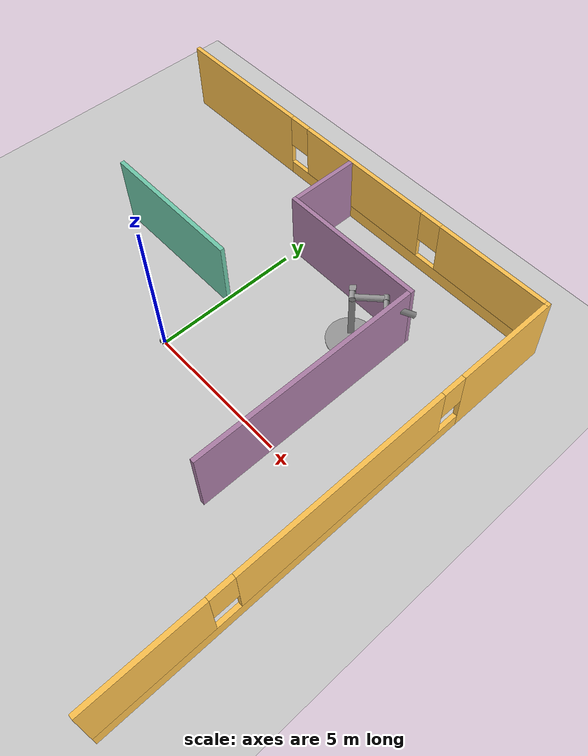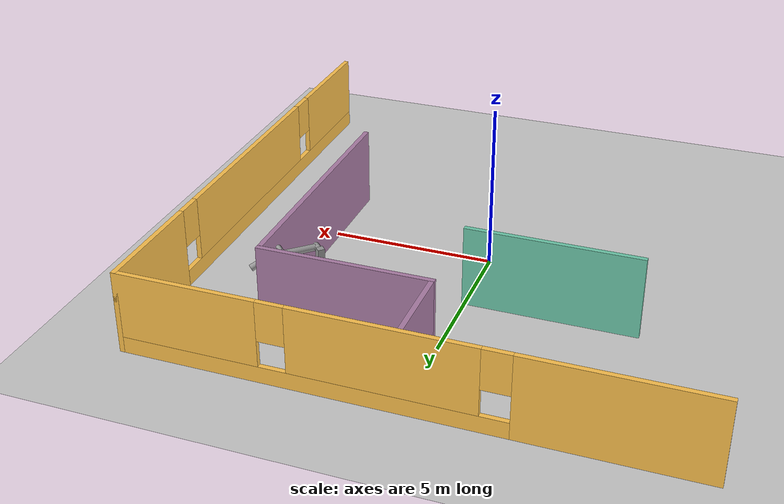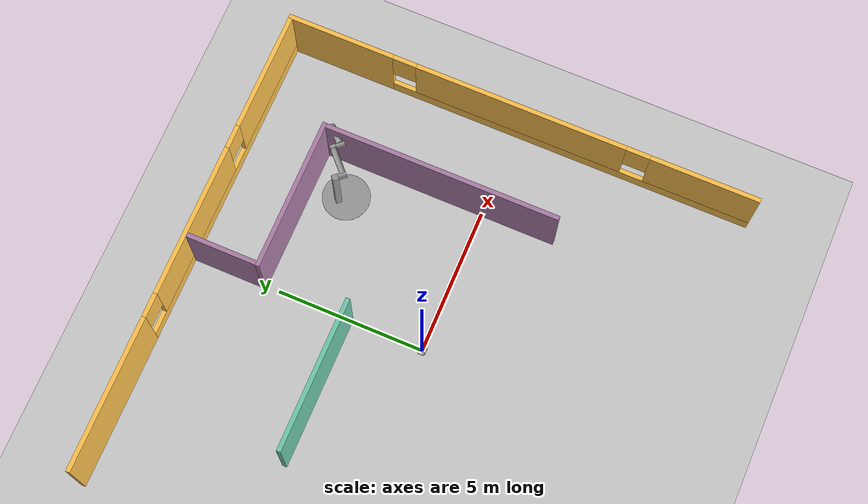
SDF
<sdf version="1.7">
 <world name="default">
  <model name="ground_plane">
   <static>1</static>
   <link name="link">
    <collision name="collision">
     <geometry><plane><normal>0 0 1</normal><size>100 100</size></plane></geometry>
     <surface><friction><ode><mu>100</mu><mu2>50</mu2></ode></friction></surface>
    </collision>
    <visual name="visual">
     <cast_shadows>0</cast_shadows>
     <geometry><plane><normal>0 0 1</normal><size>100 100</size></plane></geometry>
     <material>
      <script><uri>file://media/materials/scripts/gazebo.material</uri><name>Gazebo/Grey</name></script>
     </material>
    </visual>
   </link>
  </model>
  <model name="basic_office">
   <link name="Wall_11">
    <pose>8 0 0 0 0 -1.5708</pose>
    <visual name="Wall_11_Visual_3">
     <pose>6.2375 0 1.5 0 -0 0</pose>
     <geometry><box><size>3.675 0.15 2</size></box></geometry>
     <material>
      <script><uri>file://media/materials/scripts/gazebo.material</uri><name>Gazebo/Grey</name></script>
      <ambient>1 0.764706 0.305882 1</ambient>
      <shader type="pixel"/>
     </material>
     <meta><layer>0</layer></meta>
    </visual>
    <visual name="Wall_11_Visual_5">
     <pose>4 0 1.9 0 -0 0</pose>
     <geometry><box><size>0.8 0.15 1.2</size></box></geometry>
     <material>
      <script><uri>file://media/materials/scripts/gazebo.material</uri><name>Gazebo/Grey</name></script>
      <ambient>1 0.764706 0.305882 1</ambient>
      <shader type="pixel"/>
     </material>
     <meta><layer>0</layer></meta>
    </visual>
    <visual name="Wall_11_Visual_2">
     <pose>0 0 1.5 0 -0 0</pose>
     <geometry><box><size>7.2 0.15 2</size></box></geometry>
     <material>
      <script><uri>file://media/materials/scripts/gazebo.material</uri><name>Gazebo/Grey</name></script>
      <ambient>1 0.764706 0.305882 1</ambient>
      <shader type="pixel"/>
     </material>
     <meta><layer>0</layer></meta>
    </visual>
    <visual name="Wall_11_Visual_0">
     <pose>-6.2375 0 1.25 0 -0 0</pose>
     <geometry><box><size>3.675 0.15 2.5</size></box></geometry>
     <material>
      <script><uri>file://media/materials/scripts/gazebo.material</uri><name>Gazebo/Grey</name></script>
      <ambient>1 0.764706 0.305882 1</ambient>
      <shader type="pixel"/>
     </material>
     <meta><layer>0</layer></meta>
    </visual>
    <visual name="Wall_11_Visual_4">
     <pose>-4 0 1.9 0 -0 0</pose>
     <geometry><box><size>0.8 0.15 1.2</size></box></geometry>
     <material>
      <script><uri>file://media/materials/scripts/gazebo.material</uri><name>Gazebo/Grey</name></script>
      <ambient>1 0.764706 0.305882 1</ambient>
      <shader type="pixel"/>
     </material>
     <meta><layer>0</layer></meta>
    </visual>
    <visual name="Wall_11_Visual_1">
     <pose>1.8375 0 0.25 0 -0 0</pose>
     <geometry><box><size>12.475 0.15 0.5</size></box></geometry>
     <material>
      <script><uri>file://media/materials/scripts/gazebo.material</uri><name>Gazebo/Grey</name></script>
      <ambient>1 0.764706 0.305882 1</ambient>
      <shader type="pixel"/>
     </material>
     <meta><layer>0</layer></meta>
    </visual>
    <collision name="Wall_11_Collision_0">
     <pose>-6.2375 0 1.25 0 -0 0</pose>
     <geometry><box><size>3.675 0.15 2.5</size></box></geometry>
     <surface>
      <friction>
       <ode><mu>1</mu><mu2>1</mu2><fdir1>0 0 0</fdir1><slip1>0</slip1><slip2>0</slip2></ode>
       <torsional>
        <coefficient>1</coefficient>
        <patch_radius>0</patch_radius>
        <surface_radius>0</surface_radius>
        <use_patch_radius>1</use_patch_radius>
        <ode><slip>0</slip></ode>
       </torsional>
      </friction>
      <bounce><restitution_coefficient>0</restitution_coefficient><threshold>1e+06</threshold></bounce>
      <contact>
       <collide_without_contact>0</collide_without_contact>
       <collide_without_contact_bitmask>1</collide_without_contact_bitmask>
       <collide_bitmask>1</collide_bitmask>
       <ode>
        <soft_cfm>0</soft_cfm>
        <soft_erp>0.2</soft_erp>
        <kp>1e+13</kp>
        <kd>1</kd>
        <max_vel>0.01</max_vel>
        <min_depth>0</min_depth>
       </ode>
       <bullet>
        <split_impulse>1</split_impulse>
        <split_impulse_penetration_threshold>-0.01</split_impulse_penetration_threshold>
        <soft_cfm>0</soft_cfm>
        <soft_erp>0.2</soft_erp>
        <kp>1e+13</kp>
        <kd>1</kd>
       </bullet>
      </contact>
     </surface>
    </collision>
    <collision name="Wall_11_Collision_3">
     <pose>6.2375 0 1.5 0 -0 0</pose>
     <geometry><box><size>3.675 0.15 2</size></box></geometry>
     <surface>
      <friction>
       <ode><mu>1</mu><mu2>1</mu2><fdir1>0 0 0</fdir1><slip1>0</slip1><slip2>0</slip2></ode>
       <torsional>
        <coefficient>1</coefficient>
        <patch_radius>0</patch_radius>
        <surface_radius>0</surface_radius>
        <use_patch_radius>1</use_patch_radius>
        <ode><slip>0</slip></ode>
       </torsional>
      </friction>
      <bounce><restitution_coefficient>0</restitution_coefficient><threshold>1e+06</threshold></bounce>
      <contact>
       <collide_without_contact>0</collide_without_contact>
       <collide_without_contact_bitmask>1</collide_without_contact_bitmask>
       <collide_bitmask>1</collide_bitmask>
       <ode>
        <soft_cfm>0</soft_cfm>
        <soft_erp>0.2</soft_erp>
        <kp>1e+13</kp>
        <kd>1</kd>
        <max_vel>0.01</max_vel>
        <min_depth>0</min_depth>
       </ode>
       <bullet>
        <split_impulse>1</split_impulse>
        <split_impulse_penetration_threshold>-0.01</split_impulse_penetration_threshold>
        <soft_cfm>0</soft_cfm>
        <soft_erp>0.2</soft_erp>
        <kp>1e+13</kp>
        <kd>1</kd>
       </bullet>
      </contact>
     </surface>
    </collision>
    <collision name="Wall_11_Collision_5">
     <pose>4 0 1.9 0 -0 0</pose>
     <geometry><box><size>0.8 0.15 1.2</size></box></geometry>
     <surface>
      <friction>
       <ode><mu>1</mu><mu2>1</mu2><fdir1>0 0 0</fdir1><slip1>0</slip1><slip2>0</slip2></ode>
       <torsional>
        <coefficient>1</coefficient>
        <patch_radius>0</patch_radius>
        <surface_radius>0</surface_radius>
        <use_patch_radius>1</use_patch_radius>
        <ode><slip>0</slip></ode>
       </torsional>
      </friction>
      <bounce><restitution_coefficient>0</restitution_coefficient><threshold>1e+06</threshold></bounce>
      <contact>
       <collide_without_contact>0</collide_without_contact>
       <collide_without_contact_bitmask>1</collide_without_contact_bitmask>
       <collide_bitmask>1</collide_bitmask>
       <ode>
        <soft_cfm>0</soft_cfm>
        <soft_erp>0.2</soft_erp>
        <kp>1e+13</kp>
        <kd>1</kd>
        <max_vel>0.01</max_vel>
        <min_depth>0</min_depth>
       </ode>
       <bullet>
        <split_impulse>1</split_impulse>
        <split_impulse_penetration_threshold>-0.01</split_impulse_penetration_threshold>
        <soft_cfm>0</soft_cfm>
        <soft_erp>0.2</soft_erp>
        <kp>1e+13</kp>
        <kd>1</kd>
       </bullet>
      </contact>
     </surface>
    </collision>
    <collision name="Wall_11_Collision_1">
     <pose>1.8375 0 0.25 0 -0 0</pose>
     <geometry><box><size>12.475 0.15 0.5</size></box></geometry>
     <surface>
      <friction>
       <ode><mu>1</mu><mu2>1</mu2><fdir1>0 0 0</fdir1><slip1>0</slip1><slip2>0</slip2></ode>
       <torsional>
        <coefficient>1</coefficient>
        <patch_radius>0</patch_radius>
        <surface_radius>0</surface_radius>
        <use_patch_radius>1</use_patch_radius>
        <ode><slip>0</slip></ode>
       </torsional>
      </friction>
      <bounce><restitution_coefficient>0</restitution_coefficient><threshold>1e+06</threshold></bounce>
      <contact>
       <collide_without_contact>0</collide_without_contact>
       <collide_without_contact_bitmask>1</collide_without_contact_bitmask>
       <collide_bitmask>1</collide_bitmask>
       <ode>
        <soft_cfm>0</soft_cfm>
        <soft_erp>0.2</soft_erp>
        <kp>1e+13</kp>
        <kd>1</kd>
        <max_vel>0.01</max_vel>
        <min_depth>0</min_depth>
       </ode>
       <bullet>
        <split_impulse>1</split_impulse>
        <split_impulse_penetration_threshold>-0.01</split_impulse_penetration_threshold>
        <soft_cfm>0</soft_cfm>
        <soft_erp>0.2</soft_erp>
        <kp>1e+13</kp>
        <kd>1</kd>
       </bullet>
      </contact>
     </surface>
    </collision>
    <collision name="Wall_11_Collision_4">
     <pose>-4 0 1.9 0 -0 0</pose>
     <geometry><box><size>0.8 0.15 1.2</size></box></geometry>
     <surface>
      <friction>
       <ode><mu>1</mu><mu2>1</mu2><fdir1>0 0 0</fdir1><slip1>0</slip1><slip2>0</slip2></ode>
       <torsional>
        <coefficient>1</coefficient>
        <patch_radius>0</patch_radius>
        <surface_radius>0</surface_radius>
        <use_patch_radius>1</use_patch_radius>
        <ode><slip>0</slip></ode>
       </torsional>
      </friction>
      <bounce><restitution_coefficient>0</restitution_coefficient><threshold>1e+06</threshold></bounce>
      <contact>
       <collide_without_contact>0</collide_without_contact>
       <collide_without_contact_bitmask>1</collide_without_contact_bitmask>
       <collide_bitmask>1</collide_bitmask>
       <ode>
        <soft_cfm>0</soft_cfm>
        <soft_erp>0.2</soft_erp>
        <kp>1e+13</kp>
        <kd>1</kd>
        <max_vel>0.01</max_vel>
        <min_depth>0</min_depth>
       </ode>
       <bullet>
        <split_impulse>1</split_impulse>
        <split_impulse_penetration_threshold>-0.01</split_impulse_penetration_threshold>
        <soft_cfm>0</soft_cfm>
        <soft_erp>0.2</soft_erp>
        <kp>1e+13</kp>
        <kd>1</kd>
       </bullet>
      </contact>
     </surface>
    </collision>
    <collision name="Wall_11_Collision_2">
     <pose>0 0 1.5 0 -0 0</pose>
     <geometry><box><size>7.2 0.15 2</size></box></geometry>
     <surface>
      <friction>
       <ode><mu>1</mu><mu2>1</mu2><fdir1>0 0 0</fdir1><slip1>0</slip1><slip2>0</slip2></ode>
       <torsional>
        <coefficient>1</coefficient>
        <patch_radius>0</patch_radius>
        <surface_radius>0</surface_radius>
        <use_patch_radius>1</use_patch_radius>
        <ode><slip>0</slip></ode>
       </torsional>
      </friction>
      <bounce><restitution_coefficient>0</restitution_coefficient><threshold>1e+06</threshold></bounce>
      <contact>
       <collide_without_contact>0</collide_without_contact>
       <collide_without_contact_bitmask>1</collide_without_contact_bitmask>
       <collide_bitmask>1</collide_bitmask>
       <ode>
        <soft_cfm>0</soft_cfm>
        <soft_erp>0.2</soft_erp>
        <kp>1e+13</kp>
        <kd>1</kd>
        <max_vel>0.01</max_vel>
        <min_depth>0</min_depth>
       </ode>
       <bullet>
        <split_impulse>1</split_impulse>
        <split_impulse_penetration_threshold>-0.01</split_impulse_penetration_threshold>
        <soft_cfm>0</soft_cfm>
        <soft_erp>0.2</soft_erp>
        <kp>1e+13</kp>
        <kd>1</kd>
       </bullet>
      </contact>
     </surface>
    </collision>
   </link>
   <link name="Wall_15">
    <pose>0 8 0 0 -0 0</pose>
    <visual name="Wall_15_Visual_2">
     <pose>0.5 0 1.5 0 -0 0</pose>
     <geometry><box><size>5.2 0.15 2</size></box></geometry>
     <material>
      <script><uri>file://media/materials/scripts/gazebo.material</uri><name>Gazebo/Grey</name></script>
      <ambient>1 0.764706 0.305882 1</ambient>
      <shader type="pixel"/>
     </material>
     <meta><layer>0</layer></meta>
    </visual>
    <visual name="Wall_15_Visual_4">
     <pose>-2.5 0 1.9 0 -0 0</pose>
     <geometry><box><size>0.8 0.15 1.2</size></box></geometry>
     <material>
      <script><uri>file://media/materials/scripts/gazebo.material</uri><name>Gazebo/Grey</name></script>
      <ambient>1 0.764706 0.305882 1</ambient>
      <shader type="pixel"/>
     </material>
     <meta><layer>0</layer></meta>
    </visual>
    <visual name="Wall_15_Visual_5">
     <pose>3.5 0 1.9 0 -0 0</pose>
     <geometry><box><size>0.8 0.15 1.2</size></box></geometry>
     <material>
      <script><uri>file://media/materials/scripts/gazebo.material</uri><name>Gazebo/Grey</name></script>
      <ambient>1 0.764706 0.305882 1</ambient>
      <shader type="pixel"/>
     </material>
     <meta><layer>0</layer></meta>
    </visual>
    <visual name="Wall_15_Visual_3">
     <pose>5.9875 0 1.5 0 -0 0</pose>
     <geometry><box><size>4.175 0.15 2</size></box></geometry>
     <material>
      <script><uri>file://media/materials/scripts/gazebo.material</uri><name>Gazebo/Grey</name></script>
      <ambient>1 0.764706 0.305882 1</ambient>
      <shader type="pixel"/>
     </material>
     <meta><layer>0</layer></meta>
    </visual>
    <visual name="Wall_15_Visual_1">
     <pose>2.5875 0 0.25 0 -0 0</pose>
     <geometry><box><size>10.975 0.15 0.5</size></box></geometry>
     <material>
      <script><uri>file://media/materials/scripts/gazebo.material</uri><name>Gazebo/Grey</name></script>
      <ambient>1 0.764706 0.305882 1</ambient>
      <shader type="pixel"/>
     </material>
     <meta><layer>0</layer></meta>
    </visual>
    <visual name="Wall_15_Visual_0">
     <pose>-5.4875 0 1.25 0 -0 0</pose>
     <geometry><box><size>5.175 0.15 2.5</size></box></geometry>
     <material>
      <script><uri>file://media/materials/scripts/gazebo.material</uri><name>Gazebo/Grey</name></script>
      <ambient>1 0.764706 0.305882 1</ambient>
      <shader type="pixel"/>
     </material>
     <meta><layer>0</layer></meta>
    </visual>
    <collision name="Wall_15_Collision_0">
     <pose>-5.4875 0 1.25 0 -0 0</pose>
     <geometry><box><size>5.175 0.15 2.5</size></box></geometry>
     <surface>
      <friction>
       <ode><mu>1</mu><mu2>1</mu2><fdir1>0 0 0</fdir1><slip1>0</slip1><slip2>0</slip2></ode>
       <torsional>
        <coefficient>1</coefficient>
        <patch_radius>0</patch_radius>
        <surface_radius>0</surface_radius>
        <use_patch_radius>1</use_patch_radius>
        <ode><slip>0</slip></ode>
       </torsional>
      </friction>
      <bounce><restitution_coefficient>0</restitution_coefficient><threshold>1e+06</threshold></bounce>
      <contact>
       <collide_without_contact>0</collide_without_contact>
       <collide_without_contact_bitmask>1</collide_without_contact_bitmask>
       <collide_bitmask>1</collide_bitmask>
       <ode>
        <soft_cfm>0</soft_cfm>
        <soft_erp>0.2</soft_erp>
        <kp>1e+13</kp>
        <kd>1</kd>
        <max_vel>0.01</max_vel>
        <min_depth>0</min_depth>
       </ode>
       <bullet>
        <split_impulse>1</split_impulse>
        <split_impulse_penetration_threshold>-0.01</split_impulse_penetration_threshold>
        <soft_cfm>0</soft_cfm>
        <soft_erp>0.2</soft_erp>
        <kp>1e+13</kp>
        <kd>1</kd>
       </bullet>
      </contact>
     </surface>
    </collision>
    <collision name="Wall_15_Collision_5">
     <pose>3.5 0 1.9 0 -0 0</pose>
     <geometry><box><size>0.8 0.15 1.2</size></box></geometry>
     <surface>
      <friction>
       <ode><mu>1</mu><mu2>1</mu2><fdir1>0 0 0</fdir1><slip1>0</slip1><slip2>0</slip2></ode>
       <torsional>
        <coefficient>1</coefficient>
        <patch_radius>0</patch_radius>
        <surface_radius>0</surface_radius>
        <use_patch_radius>1</use_patch_radius>
        <ode><slip>0</slip></ode>
       </torsional>
      </friction>
      <bounce><restitution_coefficient>0</restitution_coefficient><threshold>1e+06</threshold></bounce>
      <contact>
       <collide_without_contact>0</collide_without_contact>
       <collide_without_contact_bitmask>1</collide_without_contact_bitmask>
       <collide_bitmask>1</collide_bitmask>
       <ode>
        <soft_cfm>0</soft_cfm>
        <soft_erp>0.2</soft_erp>
        <kp>1e+13</kp>
        <kd>1</kd>
        <max_vel>0.01</max_vel>
        <min_depth>0</min_depth>
       </ode>
       <bullet>
        <split_impulse>1</split_impulse>
        <split_impulse_penetration_threshold>-0.01</split_impulse_penetration_threshold>
        <soft_cfm>0</soft_cfm>
        <soft_erp>0.2</soft_erp>
        <kp>1e+13</kp>
        <kd>1</kd>
       </bullet>
      </contact>
     </surface>
    </collision>
    <collision name="Wall_15_Collision_2">
     <pose>0.5 0 1.5 0 -0 0</pose>
     <geometry><box><size>5.2 0.15 2</size></box></geometry>
     <surface>
      <friction>
       <ode><mu>1</mu><mu2>1</mu2><fdir1>0 0 0</fdir1><slip1>0</slip1><slip2>0</slip2></ode>
       <torsional>
        <coefficient>1</coefficient>
        <patch_radius>0</patch_radius>
        <surface_radius>0</surface_radius>
        <use_patch_radius>1</use_patch_radius>
        <ode><slip>0</slip></ode>
       </torsional>
      </friction>
      <bounce><restitution_coefficient>0</restitution_coefficient><threshold>1e+06</threshold></bounce>
      <contact>
       <collide_without_contact>0</collide_without_contact>
       <collide_without_contact_bitmask>1</collide_without_contact_bitmask>
       <collide_bitmask>1</collide_bitmask>
       <ode>
        <soft_cfm>0</soft_cfm>
        <soft_erp>0.2</soft_erp>
        <kp>1e+13</kp>
        <kd>1</kd>
        <max_vel>0.01</max_vel>
        <min_depth>0</min_depth>
       </ode>
       <bullet>
        <split_impulse>1</split_impulse>
        <split_impulse_penetration_threshold>-0.01</split_impulse_penetration_threshold>
        <soft_cfm>0</soft_cfm>
        <soft_erp>0.2</soft_erp>
        <kp>1e+13</kp>
        <kd>1</kd>
       </bullet>
      </contact>
     </surface>
    </collision>
    <collision name="Wall_15_Collision_3">
     <pose>5.9875 0 1.5 0 -0 0</pose>
     <geometry><box><size>4.175 0.15 2</size></box></geometry>
     <surface>
      <friction>
       <ode><mu>1</mu><mu2>1</mu2><fdir1>0 0 0</fdir1><slip1>0</slip1><slip2>0</slip2></ode>
       <torsional>
        <coefficient>1</coefficient>
        <patch_radius>0</patch_radius>
        <surface_radius>0</surface_radius>
        <use_patch_radius>1</use_patch_radius>
        <ode><slip>0</slip></ode>
       </torsional>
      </friction>
      <bounce><restitution_coefficient>0</restitution_coefficient><threshold>1e+06</threshold></bounce>
      <contact>
       <collide_without_contact>0</collide_without_contact>
       <collide_without_contact_bitmask>1</collide_without_contact_bitmask>
       <collide_bitmask>1</collide_bitmask>
       <ode>
        <soft_cfm>0</soft_cfm>
        <soft_erp>0.2</soft_erp>
        <kp>1e+13</kp>
        <kd>1</kd>
        <max_vel>0.01</max_vel>
        <min_depth>0</min_depth>
       </ode>
       <bullet>
        <split_impulse>1</split_impulse>
        <split_impulse_penetration_threshold>-0.01</split_impulse_penetration_threshold>
        <soft_cfm>0</soft_cfm>
        <soft_erp>0.2</soft_erp>
        <kp>1e+13</kp>
        <kd>1</kd>
       </bullet>
      </contact>
     </surface>
    </collision>
    <collision name="Wall_15_Collision_1">
     <pose>2.5875 0 0.25 0 -0 0</pose>
     <geometry><box><size>10.975 0.15 0.5</size></box></geometry>
     <surface>
      <friction>
       <ode><mu>1</mu><mu2>1</mu2><fdir1>0 0 0</fdir1><slip1>0</slip1><slip2>0</slip2></ode>
       <torsional>
        <coefficient>1</coefficient>
        <patch_radius>0</patch_radius>
        <surface_radius>0</surface_radius>
        <use_patch_radius>1</use_patch_radius>
        <ode><slip>0</slip></ode>
       </torsional>
      </friction>
      <bounce><restitution_coefficient>0</restitution_coefficient><threshold>1e+06</threshold></bounce>
      <contact>
       <collide_without_contact>0</collide_without_contact>
       <collide_without_contact_bitmask>1</collide_without_contact_bitmask>
       <collide_bitmask>1</collide_bitmask>
       <ode>
        <soft_cfm>0</soft_cfm>
        <soft_erp>0.2</soft_erp>
        <kp>1e+13</kp>
        <kd>1</kd>
        <max_vel>0.01</max_vel>
        <min_depth>0</min_depth>
       </ode>
       <bullet>
        <split_impulse>1</split_impulse>
        <split_impulse_penetration_threshold>-0.01</split_impulse_penetration_threshold>
        <soft_cfm>0</soft_cfm>
        <soft_erp>0.2</soft_erp>
        <kp>1e+13</kp>
        <kd>1</kd>
       </bullet>
      </contact>
     </surface>
    </collision>
    <collision name="Wall_15_Collision_4">
     <pose>-2.5 0 1.9 0 -0 0</pose>
     <geometry><box><size>0.8 0.15 1.2</size></box></geometry>
     <surface>
      <friction>
       <ode><mu>1</mu><mu2>1</mu2><fdir1>0 0 0</fdir1><slip1>0</slip1><slip2>0</slip2></ode>
       <torsional>
        <coefficient>1</coefficient>
        <patch_radius>0</patch_radius>
        <surface_radius>0</surface_radius>
        <use_patch_radius>1</use_patch_radius>
        <ode><slip>0</slip></ode>
       </torsional>
      </friction>
      <bounce><restitution_coefficient>0</restitution_coefficient><threshold>1e+06</threshold></bounce>
      <contact>
       <collide_without_contact>0</collide_without_contact>
       <collide_without_contact_bitmask>1</collide_without_contact_bitmask>
       <collide_bitmask>1</collide_bitmask>
       <ode>
        <soft_cfm>0</soft_cfm>
        <soft_erp>0.2</soft_erp>
        <kp>1e+13</kp>
        <kd>1</kd>
        <max_vel>0.01</max_vel>
        <min_depth>0</min_depth>
       </ode>
       <bullet>
        <split_impulse>1</split_impulse>
        <split_impulse_penetration_threshold>-0.01</split_impulse_penetration_threshold>
        <soft_cfm>0</soft_cfm>
        <soft_erp>0.2</soft_erp>
        <kp>1e+13</kp>
        <kd>1</kd>
       </bullet>
      </contact>
     </surface>
    </collision>
   </link>
   <link name="Wall_25">
    <pose>5 1.461 0 0 0 -1.5708</pose>
    <inertial>
     <mass>1</mass>
     <inertia><ixx>1</ixx><ixy>0</ixy><ixz>0</ixz><iyy>1</iyy><iyz>0</iyz><izz>1</izz></inertia>
    </inertial>
    <visual name="Wall_25_Visual">
     <pose>0 0 1.25 0 -0 0</pose>
     <geometry><box><size>7.9275 0.15 2.5</size></box></geometry>
     <material>
      <script><uri>file://media/materials/scripts/gazebo.material</uri><name>Gazebo/Grey</name></script>
      <ambient>0.678 0.498 0.659 1</ambient>
      <shader type="pixel"><normal_map>__default__</normal_map></shader>
      <diffuse>0.7 0.7 0.7 1</diffuse>
      <specular>0.01 0.01 0.01 1</specular>
      <emissive>0 0 0 1</emissive>
     </material>
     <meta><layer>0</layer></meta>
    </visual>
    <collision name="Wall_25_Collision">
     <pose>0 0 1.25 0 -0 0</pose>
     <geometry><box><size>7.9275 0.15 2.5</size></box></geometry>
     <surface>
      <friction>
       <ode><mu>1</mu><mu2>1</mu2><fdir1>0 0 0</fdir1><slip1>0</slip1><slip2>0</slip2></ode>
       <torsional>
        <coefficient>1</coefficient>
        <patch_radius>0</patch_radius>
        <surface_radius>0</surface_radius>
        <use_patch_radius>1</use_patch_radius>
        <ode><slip>0</slip></ode>
       </torsional>
      </friction>
      <bounce><restitution_coefficient>0</restitution_coefficient><threshold>1e+06</threshold></bounce>
      <contact>
       <collide_without_contact>0</collide_without_contact>
       <collide_without_contact_bitmask>1</collide_without_contact_bitmask>
       <collide_bitmask>1</collide_bitmask>
       <ode>
        <soft_cfm>0</soft_cfm>
        <soft_erp>0.2</soft_erp>
        <kp>1e+13</kp>
        <kd>1</kd>
        <max_vel>0.01</max_vel>
        <min_depth>0</min_depth>
       </ode>
       <bullet>
        <split_impulse>1</split_impulse>
        <split_impulse_penetration_threshold>-0.01</split_impulse_penetration_threshold>
        <soft_cfm>0</soft_cfm>
        <soft_erp>0.2</soft_erp>
        <kp>1e+13</kp>
        <kd>1</kd>
       </bullet>
      </contact>
     </surface>
    </collision>
   </link>
   <link name="Wall_34">
    <pose>-2.5 2.5 0 0 -0 0</pose>
    <visual name="Wall_34_Visual">
     <pose>0 0 1.25 0 -0 0</pose>
     <geometry><box><size>5.15 0.15 2.5</size></box></geometry>
     <material>
      <script><uri>file://media/materials/scripts/gazebo.material</uri><name>Gazebo/Grey</name></script>
      <ambient>0.435294 0.796078 0.67451 1</ambient>
      <shader type="pixel"/>
     </material>
     <meta><layer>0</layer></meta>
    </visual>
    <collision name="Wall_34_Collision">
     <pose>0 0 1.25 0 -0 0</pose>
     <geometry><box><size>5.15 0.15 2.5</size></box></geometry>
     <surface>
      <friction>
       <ode><mu>1</mu><mu2>1</mu2><fdir1>0 0 0</fdir1><slip1>0</slip1><slip2>0</slip2></ode>
       <torsional>
        <coefficient>1</coefficient>
        <patch_radius>0</patch_radius>
        <surface_radius>0</surface_radius>
        <use_patch_radius>1</use_patch_radius>
        <ode><slip>0</slip></ode>
       </torsional>
      </friction>
      <bounce><restitution_coefficient>0</restitution_coefficient><threshold>1e+06</threshold></bounce>
      <contact>
       <collide_without_contact>0</collide_without_contact>
       <collide_without_contact_bitmask>1</collide_without_contact_bitmask>
       <collide_bitmask>1</collide_bitmask>
       <ode>
        <soft_cfm>0</soft_cfm>
        <soft_erp>0.2</soft_erp>
        <kp>1e+13</kp>
        <kd>1</kd>
        <max_vel>0.01</max_vel>
        <min_depth>0</min_depth>
       </ode>
       <bullet>
        <split_impulse>1</split_impulse>
        <split_impulse_penetration_threshold>-0.01</split_impulse_penetration_threshold>
        <soft_cfm>0</soft_cfm>
        <soft_erp>0.2</soft_erp>
        <kp>1e+13</kp>
        <kd>1</kd>
       </bullet>
      </contact>
     </surface>
    </collision>
   </link>
   <link name="Wall_40">
    <pose>2.5 5.5 0 0 -0 3.14159</pose>
    <visual name="Wall_40_Visual">
     <pose>0 0 1.25 0 -0 0</pose>
     <geometry><box><size>5.15 0.15 2.5</size></box></geometry>
     <material>
      <script><uri>file://media/materials/scripts/gazebo.material</uri><name>Gazebo/Grey</name></script>
      <ambient>0.678431 0.498039 0.658824 1</ambient>
      <shader type="pixel"/>
     </material>
     <meta><layer>0</layer></meta>
    </visual>
    <collision name="Wall_40_Collision">
     <pose>0 0 1.25 0 -0 0</pose>
     <geometry><box><size>5.15 0.15 2.5</size></box></geometry>
     <surface>
      <friction>
       <ode><mu>1</mu><mu2>1</mu2><fdir1>0 0 0</fdir1><slip1>0</slip1><slip2>0</slip2></ode>
       <torsional>
        <coefficient>1</coefficient>
        <patch_radius>0</patch_radius>
        <surface_radius>0</surface_radius>
        <use_patch_radius>1</use_patch_radius>
        <ode><slip>0</slip></ode>
       </torsional>
      </friction>
      <bounce><restitution_coefficient>0</restitution_coefficient><threshold>1e+06</threshold></bounce>
      <contact>
       <collide_without_contact>0</collide_without_contact>
       <collide_without_contact_bitmask>1</collide_without_contact_bitmask>
       <collide_bitmask>1</collide_bitmask>
       <ode>
        <soft_cfm>0</soft_cfm>
        <soft_erp>0.2</soft_erp>
        <kp>1e+13</kp>
        <kd>1</kd>
        <max_vel>0.01</max_vel>
        <min_depth>0</min_depth>
       </ode>
       <bullet>
        <split_impulse>1</split_impulse>
        <split_impulse_penetration_threshold>-0.01</split_impulse_penetration_threshold>
        <soft_cfm>0</soft_cfm>
        <soft_erp>0.2</soft_erp>
        <kp>1e+13</kp>
        <kd>1</kd>
       </bullet>
      </contact>
     </surface>
    </collision>
   </link>
   <link name="Wall_42">
    <pose>0 6.75 0 0 0 -1.5708</pose>
    <inertial>
     <mass>1</mass>
     <inertia><ixx>1</ixx><ixy>0</ixy><ixz>0</ixz><iyy>1</iyy><iyz>0</iyz><izz>1</izz></inertia>
    </inertial>
    <visual name="Wall_42_Visual">
     <pose>0 0 1.25 0 -0 0</pose>
     <geometry><box><size>2.35 0.15 2.5</size></box></geometry>
     <material>
      <script><uri>file://media/materials/scripts/gazebo.material</uri><name>Gazebo/Grey</name></script>
      <ambient>0.678 0.498 0.659 1</ambient>
      <shader type="pixel"><normal_map>__default__</normal_map></shader>
      <diffuse>0.7 0.7 0.7 1</diffuse>
      <specular>0.01 0.01 0.01 1</specular>
      <emissive>0 0 0 1</emissive>
     </material>
     <meta><layer>0</layer></meta>
    </visual>
    <collision name="Wall_42_Collision">
     <pose>0 0 1.25 0 -0 0</pose>
     <geometry><box><size>2.35 0.15 2.5</size></box></geometry>
     <surface>
      <friction>
       <ode><mu>1</mu><mu2>1</mu2><fdir1>0 0 0</fdir1><slip1>0</slip1><slip2>0</slip2></ode>
       <torsional>
        <coefficient>1</coefficient>
        <patch_radius>0</patch_radius>
        <surface_radius>0</surface_radius>
        <use_patch_radius>1</use_patch_radius>
        <ode><slip>0</slip></ode>
       </torsional>
      </friction>
      <bounce><restitution_coefficient>0</restitution_coefficient><threshold>1e+06</threshold></bounce>
      <contact>
       <collide_without_contact>0</collide_without_contact>
       <collide_without_contact_bitmask>1</collide_without_contact_bitmask>
       <collide_bitmask>1</collide_bitmask>
       <ode>
        <soft_cfm>0</soft_cfm>
        <soft_erp>0.2</soft_erp>
        <kp>1e+13</kp>
        <kd>1</kd>
        <max_vel>0.01</max_vel>
        <min_depth>0</min_depth>
       </ode>
       <bullet>
        <split_impulse>1</split_impulse>
        <split_impulse_penetration_threshold>-0.01</split_impulse_penetration_threshold>
        <soft_cfm>0</soft_cfm>
        <soft_erp>0.2</soft_erp>
        <kp>1e+13</kp>
        <kd>1</kd>
       </bullet>
      </contact>
     </surface>
    </collision>
   </link>
   <static>1</static>
  </model>
  <model name="double_pendulum_with_base">
   <link name="base">
    <inertial>
     <mass>100</mass>
     <inertia><ixx>1</ixx><ixy>0</ixy><ixz>0</ixz><iyy>1</iyy><iyz>0</iyz><izz>1</izz></inertia>
    </inertial>
    <visual name="vis_plate_on_ground">
     <pose>0 0 0.01 0 -0 0</pose>
     <geometry><cylinder><radius>0.8</radius><length>0.02</length></cylinder></geometry>
     <material>
      <script><uri>file://media/materials/scripts/gazebo.material</uri><name>Gazebo/Grey</name></script>
     </material>
    </visual>
    <visual name="vis_pole">
     <pose>-0.275 0 1.1 0 -0 0</pose>
     <geometry><box><size>0.2 0.2 2.2</size></box></geometry>
     <material>
      <script><uri>file://media/materials/scripts/gazebo.material</uri><name>Gazebo/Grey</name></script>
     </material>
    </visual>
    <collision name="col_plate_on_ground">
     <pose>0 0 0.01 0 -0 0</pose>
     <geometry><cylinder><radius>0.8</radius><length>0.02</length></cylinder></geometry>
    </collision>
    <collision name="col_pole">
     <pose>-0.275 0 1.1 0 -0 0</pose>
     <geometry><box><size>0.2 0.2 2.2</size></box></geometry>
    </collision>
   </link>
   <link name="upper_link">
    <pose>0 0 2.1 -1.5708 0 0</pose>
    <inertial>
     <pose>0 0 0.5 0 -0 0</pose>
     <inertia><ixx>1</ixx><ixy>0</ixy><ixz>0</ixz><iyy>1</iyy><iyz>0</iyz><izz>1</izz></inertia>
     <mass>1</mass>
    </inertial>
    <visual name="vis_upper_joint">
     <pose>-0.05 0 0 3.14159 1.57079 3.14159</pose>
     <geometry><cylinder><radius>0.1</radius><length>0.3</length></cylinder></geometry>
     <material>
      <script><uri>file://media/materials/scripts/gazebo.material</uri><name>Gazebo/Grey</name></script>
     </material>
    </visual>
    <visual name="vis_lower_joint">
     <pose>0 0 1 3.14159 1.57079 3.14159</pose>
     <geometry><cylinder><radius>0.1</radius><length>0.2</length></cylinder></geometry>
     <material>
      <script><uri>file://media/materials/scripts/gazebo.material</uri><name>Gazebo/Grey</name></script>
     </material>
    </visual>
    <visual name="vis_cylinder">
     <pose>0 0 0.5 0 -0 0</pose>
     <geometry><cylinder><radius>0.1</radius><length>0.9</length></cylinder></geometry>
     <material>
      <script><uri>file://media/materials/scripts/gazebo.material</uri><name>Gazebo/Grey</name></script>
     </material>
    </visual>
    <collision name="col_upper_joint">
     <pose>-0.05 0 0 3.14159 1.57079 3.14159</pose>
     <geometry><cylinder><radius>0.1</radius><length>0.3</length></cylinder></geometry>
    </collision>
    <collision name="col_lower_joint">
     <pose>0 0 1 3.14159 1.57079 3.14159</pose>
     <geometry><cylinder><radius>0.1</radius><length>0.2</length></cylinder></geometry>
    </collision>
    <collision name="col_cylinder">
     <pose>0 0 0.5 0 -0 0</pose>
     <geometry><cylinder><radius>0.1</radius><length>0.9</length></cylinder></geometry>
    </collision>
   </link>
   <link name="lower_link">
    <pose>0.25 1 2.1 -2 0 0</pose>
    <inertial>
     <pose>0 0 0.5 0 -0 0</pose>
     <inertia><ixx>1</ixx><ixy>0</ixy><ixz>0</ixz><iyy>1</iyy><iyz>0</iyz><izz>1</izz></inertia>
     <mass>1</mass>
    </inertial>
    <visual name="vis_lower_joint">
     <pose>0 0 0 3.14159 1.57079 3.14159</pose>
     <geometry><cylinder><radius>0.08</radius><length>0.3</length></cylinder></geometry>
     <material>
      <script><uri>file://media/materials/scripts/gazebo.material</uri><name>Gazebo/Grey</name></script>
     </material>
    </visual>
    <visual name="vis_cylinder">
     <pose>0 0 0.5 0 -0 0</pose>
     <geometry><cylinder><radius>0.1</radius><length>0.9</length></cylinder></geometry>
     <material>
      <script><uri>file://media/materials/scripts/gazebo.material</uri><name>Gazebo/Grey</name></script>
     </material>
    </visual>
    <collision name="col_lower_joint">
     <pose>0 0 0 3.14159 1.57079 3.14159</pose>
     <geometry><cylinder><radius>0.08</radius><length>0.3</length></cylinder></geometry>
    </collision>
    <collision name="col_cylinder">
     <pose>0 0 0.5 0 -0 0</pose>
     <geometry><cylinder><radius>0.1</radius><length>0.9</length></cylinder></geometry>
    </collision>
   </link>
   <joint name="upper_joint" type="revolute">
    <parent>base</parent>
    <child>upper_link</child>
    <axis>
     <xyz>1 0 0</xyz>
     <limit><lower>-1e+16</lower><upper>1e+16</upper></limit>
     <dynamics><spring_reference>0</spring_reference><spring_stiffness>0</spring_stiffness></dynamics>
    </axis>
   </joint>
   <joint name="lower_joint" type="revolute">
    <parent>upper_link</parent>
    <child>lower_link</child>
    <axis>
     <xyz>1 0 0</xyz>
     <limit><lower>-1e+16</lower><upper>1e+16</upper></limit>
     <dynamics><spring_reference>0</spring_reference><spring_stiffness>0</spring_stiffness></dynamics>
    </axis>
   </joint>
   <pose>3.79781 4.31799 -1e-05 1e-06 -1.7e-05 -0.817457</pose>
  </model>
  <model name="fw_robot">
   <link name="link_0_clone">
    <inertial>
     <mass>1</mass>
     <inertia>
      <ixx>0.166667</ixx>
      <ixy>0</ixy>
      <ixz>0</ixz>
      <iyy>0.166667</iyy>
      <iyz>0</iyz>
      <izz>0.166667</izz>
     </inertia>
    </inertial>
    <pose>0 0 0.05 0 -0 0</pose>
    <visual name="visual">
     <geometry><box><size>0.3 0.2 0.02</size></box></geometry>
     <material>
      <lighting>1</lighting>
      <script><uri>file://media/materials/scripts/gazebo.material</uri><name>Gazebo/Grey</name></script>
      <shader type="pixel"><normal_map>__default__</normal_map></shader>
      <ambient>0.3 0.3 0.3 1</ambient>
      <diffuse>0.7 0.7 0.7 1</diffuse>
      <specular>0.01 0.01 0.01 1</specular>
      <emissive>0 0 0 1</emissive>
     </material>
    </visual>
    <collision name="collision_1">
     <geometry><box><size>0.3 0.2 0.02</size></box></geometry>
     <surface>
      <friction>
       <ode><mu>1</mu><mu2>1</mu2><fdir1>0 0 0</fdir1><slip1>0</slip1><slip2>0</slip2></ode>
       <torsional>
        <coefficient>1</coefficient>
        <patch_radius>0</patch_radius>
        <surface_radius>0</surface_radius>
        <use_patch_radius>1</use_patch_radius>
        <ode><slip>0</slip></ode>
       </torsional>
      </friction>
      <bounce><restitution_coefficient>0</restitution_coefficient><threshold>1e+06</threshold></bounce>
      <contact>
       <collide_without_contact>0</collide_without_contact>
       <collide_without_contact_bitmask>1</collide_without_contact_bitmask>
       <collide_bitmask>1</collide_bitmask>
       <ode>
        <soft_cfm>0</soft_cfm>
        <soft_erp>0.2</soft_erp>
        <kp>1e+13</kp>
        <kd>1</kd>
        <max_vel>0.01</max_vel>
        <min_depth>0</min_depth>
       </ode>
       <bullet>
        <split_impulse>1</split_impulse>
        <split_impulse_penetration_threshold>-0.01</split_impulse_penetration_threshold>
        <soft_cfm>0</soft_cfm>
        <soft_erp>0.2</soft_erp>
        <kp>1e+13</kp>
        <kd>1</kd>
       </bullet>
      </contact>
     </surface>
    </collision>
   </link>
   <link name="link_2_clone">
    <inertial>
     <mass>1</mass>
     <inertia><ixx>0.145833</ixx><ixy>0</ixy><ixz>0</ixz><iyy>0.145833</iyy><iyz>0</iyz><izz>0.125</izz></inertia>
    </inertial>
    <pose>-0.075 0.115 0.05 1.5708 -0 0</pose>
    <visual name="visual">
     <geometry><cylinder><radius>0.05</radius><length>0.03</length></cylinder></geometry>
     <material>
      <lighting>1</lighting>
      <script><uri>file://media/materials/scripts/gazebo.material</uri><name>Gazebo/Grey</name></script>
      <shader type="pixel"><normal_map>__default__</normal_map></shader>
      <ambient>0.3 0.3 0.3 1</ambient>
      <diffuse>0.7 0.7 0.7 1</diffuse>
      <specular>0.01 0.01 0.01 1</specular>
      <emissive>0 0 0 1</emissive>
     </material>
    </visual>
    <collision name="collision">
     <geometry><cylinder><radius>0.05</radius><length>0.03</length></cylinder></geometry>
     <surface>
      <friction>
       <ode><mu>1</mu><mu2>1</mu2><fdir1>0 0 0</fdir1><slip1>0</slip1><slip2>0</slip2></ode>
       <torsional>
        <coefficient>1</coefficient>
        <patch_radius>0</patch_radius>
        <surface_radius>0</surface_radius>
        <use_patch_radius>1</use_patch_radius>
        <ode><slip>0</slip></ode>
       </torsional>
      </friction>
      <bounce><restitution_coefficient>0</restitution_coefficient><threshold>1e+06</threshold></bounce>
      <contact>
       <collide_without_contact>0</collide_without_contact>
       <collide_without_contact_bitmask>1</collide_without_contact_bitmask>
       <collide_bitmask>1</collide_bitmask>
       <ode>
        <soft_cfm>0</soft_cfm>
        <soft_erp>0.2</soft_erp>
        <kp>1e+13</kp>
        <kd>1</kd>
        <max_vel>0.01</max_vel>
        <min_depth>0</min_depth>
       </ode>
       <bullet>
        <split_impulse>1</split_impulse>
        <split_impulse_penetration_threshold>-0.01</split_impulse_penetration_threshold>
        <soft_cfm>0</soft_cfm>
        <soft_erp>0.2</soft_erp>
        <kp>1e+13</kp>
        <kd>1</kd>
       </bullet>
      </contact>
     </surface>
    </collision>
   </link>
   <link name="link_2_clone_clone">
    <inertial>
     <mass>1</mass>
     <inertia><ixx>0.145833</ixx><ixy>0</ixy><ixz>0</ixz><iyy>0.145833</iyy><iyz>0</iyz><izz>0.125</izz></inertia>
    </inertial>
    <pose>-0.075 -0.115 0.05 1.5708 -0 0</pose>
    <visual name="visual">
     <geometry><cylinder><radius>0.05</radius><length>0.03</length></cylinder></geometry>
     <material>
      <lighting>1</lighting>
      <script><uri>file://media/materials/scripts/gazebo.material</uri><name>Gazebo/Grey</name></script>
      <shader type="pixel"><normal_map>__default__</normal_map></shader>
      <ambient>0.3 0.3 0.3 1</ambient>
      <diffuse>0.7 0.7 0.7 1</diffuse>
      <specular>0.01 0.01 0.01 1</specular>
      <emissive>0 0 0 1</emissive>
     </material>
    </visual>
    <collision name="collision">
     <geometry><cylinder><radius>0.05</radius><length>0.03</length></cylinder></geometry>
     <surface>
      <friction>
       <ode><mu>1</mu><mu2>1</mu2><fdir1>0 0 0</fdir1><slip1>0</slip1><slip2>0</slip2></ode>
       <torsional>
        <coefficient>1</coefficient>
        <patch_radius>0</patch_radius>
        <surface_radius>0</surface_radius>
        <use_patch_radius>1</use_patch_radius>
        <ode><slip>0</slip></ode>
       </torsional>
      </friction>
      <bounce><restitution_coefficient>0</restitution_coefficient><threshold>1e+06</threshold></bounce>
      <contact>
       <collide_without_contact>0</collide_without_contact>
       <collide_without_contact_bitmask>1</collide_without_contact_bitmask>
       <collide_bitmask>1</collide_bitmask>
       <ode>
        <soft_cfm>0</soft_cfm>
        <soft_erp>0.2</soft_erp>
        <kp>1e+13</kp>
        <kd>1</kd>
        <max_vel>0.01</max_vel>
        <min_depth>0</min_depth>
       </ode>
       <bullet>
        <split_impulse>1</split_impulse>
        <split_impulse_penetration_threshold>-0.01</split_impulse_penetration_threshold>
        <soft_cfm>0</soft_cfm>
        <soft_erp>0.2</soft_erp>
        <kp>1e+13</kp>
        <kd>1</kd>
       </bullet>
      </contact>
     </surface>
    </collision>
   </link>
   <link name="link_2_clone_clone_0">
    <inertial>
     <mass>1</mass>
     <inertia><ixx>0.145833</ixx><ixy>0</ixy><ixz>0</ixz><iyy>0.145833</iyy><iyz>0</iyz><izz>0.125</izz></inertia>
    </inertial>
    <pose>0.075 0.115 0.05 1.5708 -0 0</pose>
    <visual name="visual">
     <geometry><cylinder><radius>0.05</radius><length>0.03</length></cylinder></geometry>
     <material>
      <lighting>1</lighting>
      <script><uri>file://media/materials/scripts/gazebo.material</uri><name>Gazebo/Grey</name></script>
      <shader type="pixel"><normal_map>__default__</normal_map></shader>
      <ambient>0.3 0.3 0.3 1</ambient>
      <diffuse>0.7 0.7 0.7 1</diffuse>
      <specular>0.01 0.01 0.01 1</specular>
      <emissive>0 0 0 1</emissive>
     </material>
    </visual>
    <collision name="collision">
     <geometry><cylinder><radius>0.05</radius><length>0.03</length></cylinder></geometry>
     <surface>
      <friction>
       <ode><mu>1</mu><mu2>1</mu2><fdir1>0 0 0</fdir1><slip1>0</slip1><slip2>0</slip2></ode>
       <torsional>
        <coefficient>1</coefficient>
        <patch_radius>0</patch_radius>
        <surface_radius>0</surface_radius>
        <use_patch_radius>1</use_patch_radius>
        <ode><slip>0</slip></ode>
       </torsional>
      </friction>
      <bounce><restitution_coefficient>0</restitution_coefficient><threshold>1e+06</threshold></bounce>
      <contact>
       <collide_without_contact>0</collide_without_contact>
       <collide_without_contact_bitmask>1</collide_without_contact_bitmask>
       <collide_bitmask>1</collide_bitmask>
       <ode>
        <soft_cfm>0</soft_cfm>
        <soft_erp>0.2</soft_erp>
        <kp>1e+13</kp>
        <kd>1</kd>
        <max_vel>0.01</max_vel>
        <min_depth>0</min_depth>
       </ode>
       <bullet>
        <split_impulse>1</split_impulse>
        <split_impulse_penetration_threshold>-0.01</split_impulse_penetration_threshold>
        <soft_cfm>0</soft_cfm>
        <soft_erp>0.2</soft_erp>
        <kp>1e+13</kp>
        <kd>1</kd>
       </bullet>
      </contact>
     </surface>
    </collision>
   </link>
   <link name="link_2_clone_clone_1">
    <inertial>
     <mass>1</mass>
     <inertia><ixx>0.145833</ixx><ixy>0</ixy><ixz>0</ixz><iyy>0.145833</iyy><iyz>0</iyz><izz>0.125</izz></inertia>
    </inertial>
    <pose>0.075 -0.115 0.05 1.5708 -0 0</pose>
    <visual name="visual">
     <geometry><cylinder><radius>0.05</radius><length>0.03</length></cylinder></geometry>
     <material>
      <lighting>1</lighting>
      <script><uri>file://media/materials/scripts/gazebo.material</uri><name>Gazebo/Grey</name></script>
      <shader type="pixel"><normal_map>__default__</normal_map></shader>
      <ambient>0.3 0.3 0.3 1</ambient>
      <diffuse>0.7 0.7 0.7 1</diffuse>
      <specular>0.01 0.01 0.01 1</specular>
      <emissive>0 0 0 1</emissive>
     </material>
    </visual>
    <collision name="collision">
     <geometry><cylinder><radius>0.05</radius><length>0.03</length></cylinder></geometry>
     <surface>
      <friction>
       <ode><mu>1</mu><mu2>1</mu2><fdir1>0 0 0</fdir1><slip1>0</slip1><slip2>0</slip2></ode>
       <torsional>
        <coefficient>1</coefficient>
        <patch_radius>0</patch_radius>
        <surface_radius>0</surface_radius>
        <use_patch_radius>1</use_patch_radius>
        <ode><slip>0</slip></ode>
       </torsional>
      </friction>
      <bounce><restitution_coefficient>0</restitution_coefficient><threshold>1e+06</threshold></bounce>
      <contact>
       <collide_without_contact>0</collide_without_contact>
       <collide_without_contact_bitmask>1</collide_without_contact_bitmask>
       <collide_bitmask>1</collide_bitmask>
       <ode>
        <soft_cfm>0</soft_cfm>
        <soft_erp>0.2</soft_erp>
        <kp>1e+13</kp>
        <kd>1</kd>
        <max_vel>0.01</max_vel>
        <min_depth>0</min_depth>
       </ode>
       <bullet>
        <split_impulse>1</split_impulse>
        <split_impulse_penetration_threshold>-0.01</split_impulse_penetration_threshold>
        <soft_cfm>0</soft_cfm>
        <soft_erp>0.2</soft_erp>
        <kp>1e+13</kp>
        <kd>1</kd>
       </bullet>
      </contact>
     </surface>
    </collision>
   </link>
   <joint name="link_0_clone_JOINT_1" type="revolute">
    <parent>link_0_clone</parent>
    <child>link_2_clone_clone_0</child>
    <axis>
     <xyz>0 0 1</xyz>
     <limit>
      <lower>-1.79769e+308</lower>
      <upper>1.79769e+308</upper>
      <effort>-1</effort>
      <velocity>-1</velocity>
     </limit>
     <dynamics>
      <spring_reference>0</spring_reference>
      <spring_stiffness>0</spring_stiffness>
      <damping>0</damping>
     </dynamics>
    </axis>
    <physics>
     <ode><limit><cfm>0</cfm><erp>0.2</erp></limit><suspension><cfm>0</cfm><erp>0.2</erp></suspension></ode>
    </physics>
   </joint>
   <joint name="link_0_clone_JOINT_3" type="revolute">
    <parent>link_0_clone</parent>
    <child>link_2_clone</child>
    <axis>
     <xyz>0 0 1</xyz>
     <limit>
      <lower>-1.79769e+308</lower>
      <upper>1.79769e+308</upper>
      <effort>-1</effort>
      <velocity>-1</velocity>
     </limit>
     <dynamics>
      <spring_reference>0</spring_reference>
      <spring_stiffness>0</spring_stiffness>
      <damping>0</damping>
     </dynamics>
    </axis>
    <physics>
     <ode><limit><cfm>0</cfm><erp>0.2</erp></limit><suspension><cfm>0</cfm><erp>0.2</erp></suspension></ode>
    </physics>
   </joint>
   <joint name="link_0_clone_JOINT_4" type="revolute">
    <parent>link_0_clone</parent>
    <child>link_2_clone_clone</child>
    <axis>
     <xyz>0 0 1</xyz>
     <limit>
      <lower>-1.79769e+308</lower>
      <upper>1.79769e+308</upper>
      <effort>-1</effort>
      <velocity>-1</velocity>
     </limit>
     <dynamics>
      <spring_reference>0</spring_reference>
      <spring_stiffness>0</spring_stiffness>
      <damping>0</damping>
     </dynamics>
    </axis>
    <physics>
     <ode><limit><cfm>0</cfm><erp>0.2</erp></limit><suspension><cfm>0</cfm><erp>0.2</erp></suspension></ode>
    </physics>
   </joint>
   <joint name="link_0_clone_JOINT_5" type="revolute">
    <parent>link_0_clone</parent>
    <child>link_2_clone_clone_1</child>
    <axis>
     <xyz>0 0 1</xyz>
     <limit>
      <lower>-1.79769e+308</lower>
      <upper>1.79769e+308</upper>
      <effort>-1</effort>
      <velocity>-1</velocity>
     </limit>
     <dynamics>
      <spring_reference>0</spring_reference>
      <spring_stiffness>0</spring_stiffness>
      <damping>0</damping>
     </dynamics>
    </axis>
    <physics>
     <ode><limit><cfm>0</cfm><erp>0.2</erp></limit><suspension><cfm>0</cfm><erp>0.2</erp></suspension></ode>
    </physics>
   </joint>
   <static>0</static>
   <pose>0 0 0.05 0 -0 0</pose>
  </model>
 </world>
</sdf>
